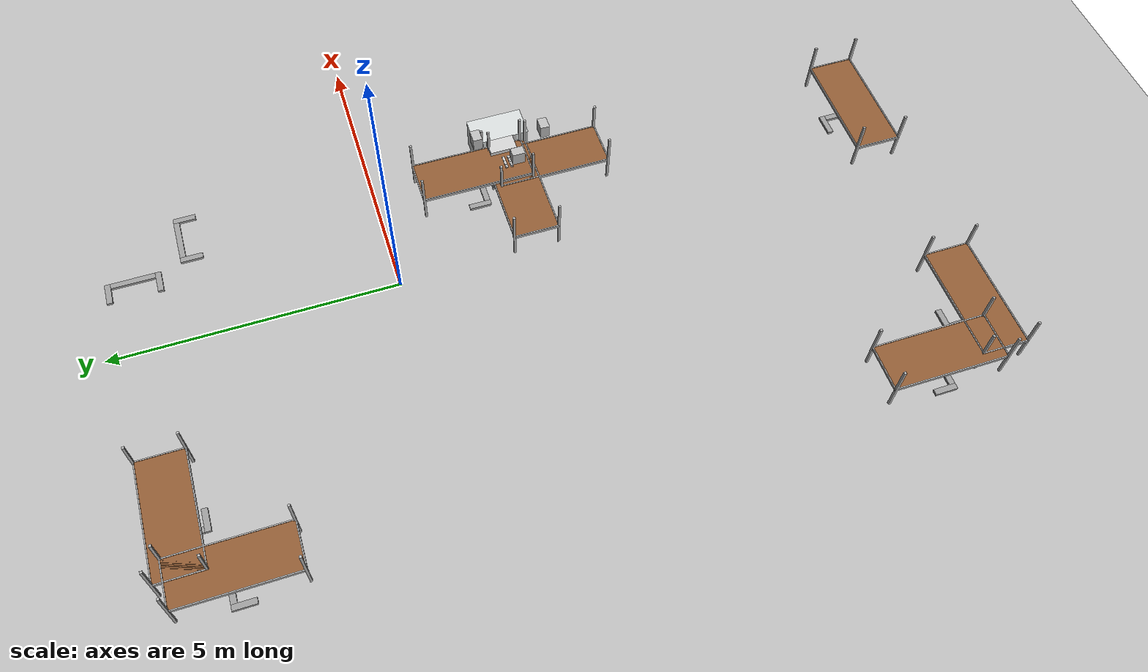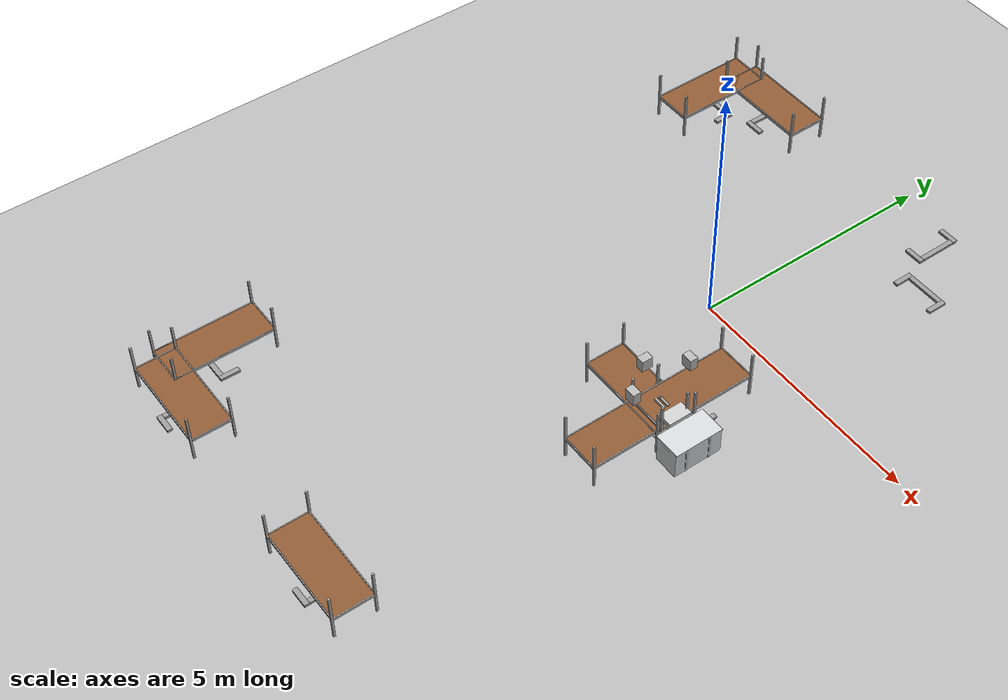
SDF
<sdf version="1.6">
 <world name="default">
  <light name="light0" type="directional">
   <pose>0 -18.818 8 0.75 -0 0</pose>
   <diffuse>0.5 0.5 0.5 1</diffuse>
   <specular>0.1 0.1 0.1 1</specular>
   <direction>0.1 0.1 -0.9</direction>
   <attenuation>
    <range>20</range>
    <constant>0.5</constant>
    <linear>0.01</linear>
    <quadratic>0.001</quadratic>
   </attenuation>
   <cast_shadows>0</cast_shadows>
  </light>
  <light name="light3" type="directional">
   <pose>3.9239 1.64974 4 0 1.2 0</pose>
   <diffuse>0.5 0.5 0.5 1</diffuse>
   <specular>0.1 0.1 0.1 1</specular>
   <direction>0.1 0.1 -0.9</direction>
   <attenuation>
    <range>20</range>
    <constant>0.5</constant>
    <linear>0.01</linear>
    <quadratic>0.001</quadratic>
   </attenuation>
   <cast_shadows>0</cast_shadows>
  </light>
  <light name="light5" type="directional">
   <pose>0.454419 12.4783 5 -0.8 0 0</pose>
   <diffuse>0.5 0.5 0.5 1</diffuse>
   <specular>0.1 0.1 0.1 1</specular>
   <direction>0.1 0.1 -0.9</direction>
   <attenuation>
    <range>20</range>
    <constant>0.5</constant>
    <linear>0.01</linear>
    <quadratic>0.001</quadratic>
   </attenuation>
   <cast_shadows>0</cast_shadows>
  </light>
  <scene>
   <shadows>false</shadows>
   <ambient>0.5 0.5 0.5 1.0</ambient>
   <grid>false</grid>
   <sky><time>22</time><sunrise>20</sunrise><sunset>21</sunset><clouds><humidity>0</humidity></clouds></sky>
  </scene>
  <include><uri>model://ground_plane</uri></include>
  <include><uri>model://moon_surface</uri><pose>0 0 -0.25 0 0 0</pose></include>
  <include><uri>model://rack_base</uri><name>rack_base</name><pose>1.421 4.35 0.05 0 -0 -1.57</pose></include>
  <include><uri>model://rack</uri><name>rack1</name><pose>1.05 -2.455 0.0 0 -0 3.14</pose></include>
  <include>
   <uri>model://boxes/box_1</uri>
   <name>box1</name>
   <pose>1.142701 -2.454580 1.234996 0.0 0.0 0.0</pose>
  </include>
  <include>
   <uri>model://rack</uri>
   <name>rack2</name>
   <pose>1.620870 -1.768304 0.074998 0.0 0.0 1.57</pose>
  </include>
  <include>
   <uri>model://boxes/box_49</uri>
   <name>box49</name>
   <pose>1.624334 -1.862088 1.309993 0.0 0.0 -1.57</pose>
  </include>
  <include><uri>model://rack</uri><name>rack3</name><pose>1.569400 -3.154831 0.0 0.0 0.0 -1.57</pose></include>
  <include>
   <uri>model://boxes/box_3</uri>
   <name>box3</name>
   <pose>1.603805 -3.061471 1.235025 0.0 0.0 1.57</pose>
  </include>
  <include><uri>model://rack</uri><name>rack4</name><pose>0.99 -8.86 0.1 0 -0 3.14</pose></include>
  <include><uri>model://rack</uri><name>rack5</name><pose>-3.46 -8.89 0.1 0 -0 0.0</pose></include>
  <include><uri>model://rack</uri><name>rack6</name><pose>-4.22 -7.85 0.1 0 -0 1.57</pose></include>
  <include><uri>model://rack</uri><name>rack7</name><pose>-4.28 3.52 0.1 0 -0 -1.57</pose></include>
  <include><uri>model://rack</uri><name>rack8</name><pose>-3.24 4.28 0.1 0 -0 0.0</pose></include>
  <include><uri>model://arm_base</uri><name>arm_base</name><pose>1.78 -2.4 0.253 0 -0 0.0</pose></include>
  <include><uri>model://drop_table</uri><name>drop_table</name><pose>2.4 -2.45 0 0 -0 0.0</pose></include>
  <plugin name="gazebo_link_ur5_attacher" filename="libgazebo_link_ur5_attacher.so"/>
  <plugin name="gazebo_ros_state" filename="libgazebo_ros_state.so">
   <ros><namespace>/_makeit</namespace></ros>
   <update_rate>1.0</update_rate>
  </plugin>
 </world>
</sdf>
